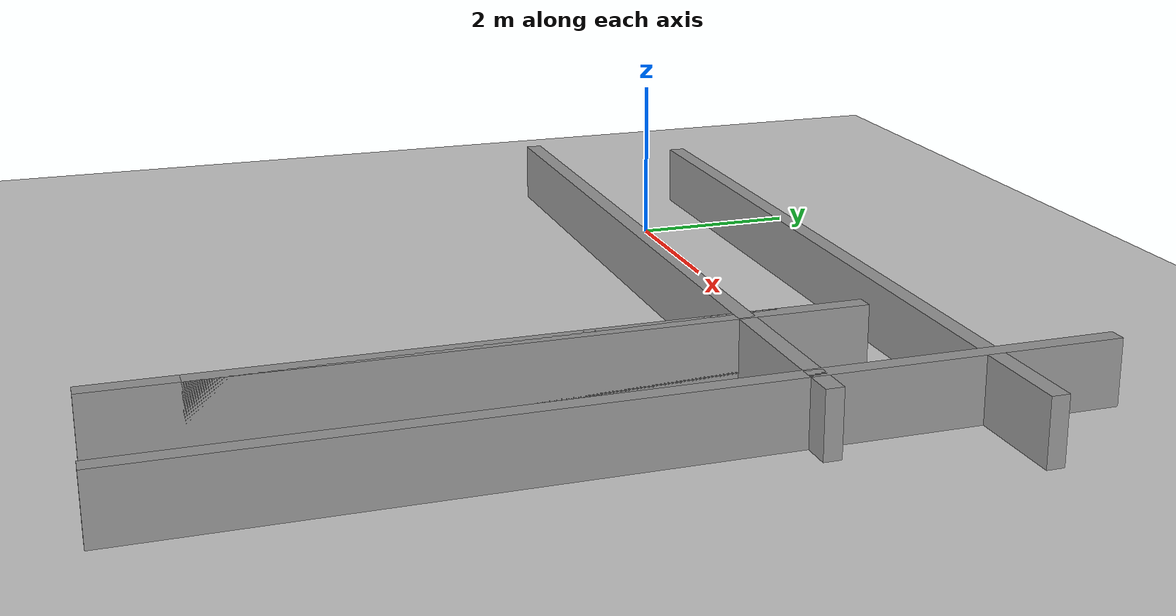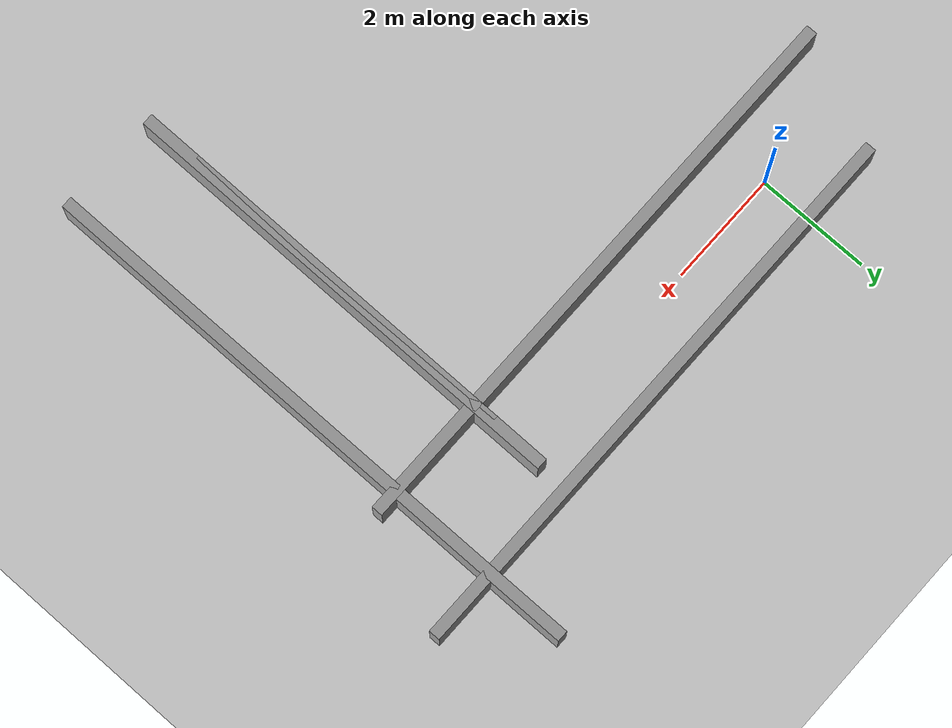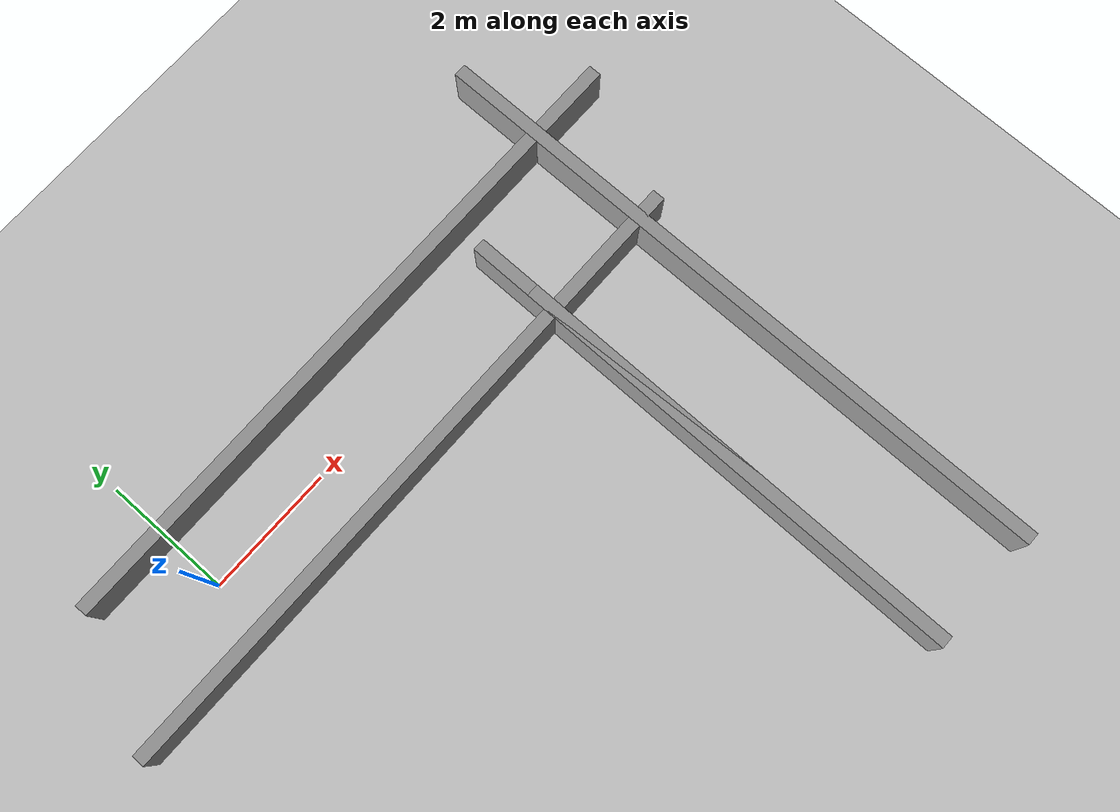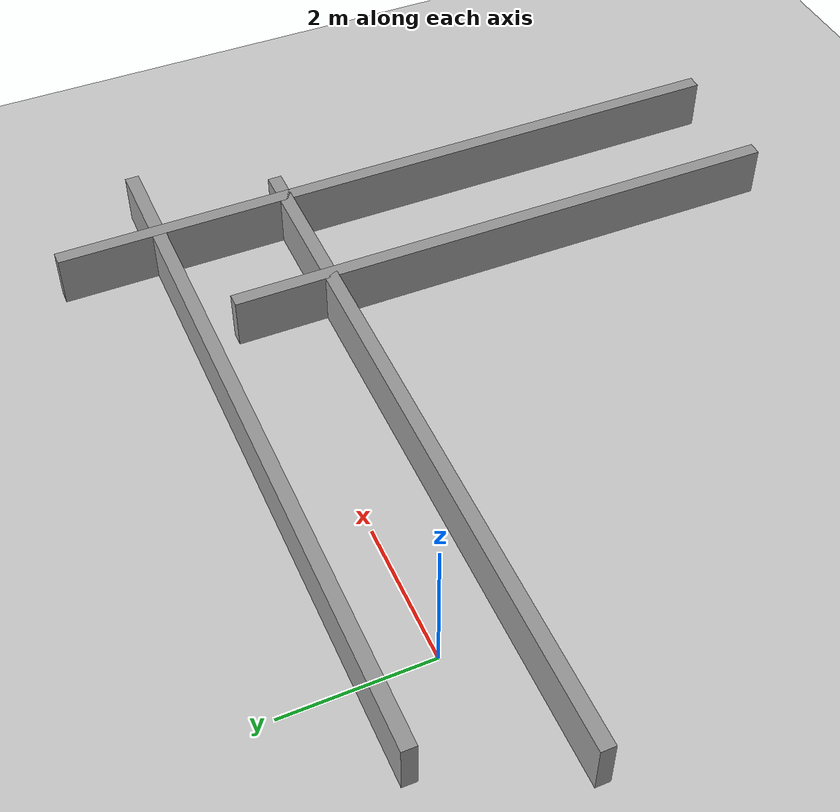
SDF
<sdf version="1.6">
 <world name="default">
  <light name="sun" type="directional">
   <pose>0 0 10 0 -0 0</pose>
   <diffuse>0.8 0.8 0.8 1</diffuse>
   <specular>0.1 0.1 0.1 1</specular>
   <attenuation>
    <range>1000</range>
    <constant>0.9</constant>
    <linear>0.01</linear>
    <quadratic>0.001</quadratic>
   </attenuation>
   <direction>-0.5 0.5 -1</direction>
  </light>
  <model name="ground_plane">
   <static>1</static>
   <link name="ground">
    <collision name="collision">
     <geometry><plane><normal>0 0 1</normal><size>100 100</size></plane></geometry>
     <surface><friction><ode><mu>100</mu><mu2>50</mu2></ode></friction></surface>
    </collision>
    <visual name="visual">
     <cast_shadows>0</cast_shadows>
     <geometry><plane><normal>0 0 1</normal><size>100 100</size></plane></geometry>
     <material>
      <script><uri>file://media/materials/scripts/gazebo.material</uri><name>Gazebo/Grey</name></script>
     </material>
    </visual>
   </link>
  </model>
  <gravity>0 0 -9.8</gravity>
  <magnetic_field>6e-06 2.3e-05 -4.2e-05</magnetic_field>
  <atmosphere type="adiabatic"/>
  <physics name="default_physics" default="0" type="ode">
   <max_step_size>0.001</max_step_size>
   <real_time_factor>1</real_time_factor>
   <real_time_update_rate>1000</real_time_update_rate>
  </physics>
  <scene><ambient>0.4 0.4 0.4 1</ambient><background>0.7 0.7 0.7 1</background><shadows>0</shadows></scene>
  <spherical_coordinates>
   <surface_model>EARTH_WGS84</surface_model>
   <latitude_deg>0</latitude_deg>
   <longitude_deg>0</longitude_deg>
   <elevation>0</elevation>
   <heading_deg>0</heading_deg>
  </spherical_coordinates>
  <model name="wall_maze">
   <link name="wall_1">
    <pose>0.803676 2.03532 1.4 0 -0 0</pose>
    <inertial>
     <inertia><ixx>nan</ixx><ixy>0</ixy><ixz>0</ixz><iyy>nan</iyy><iyz>0</iyz><izz>nan</izz></inertia>
     <mass>0</mass>
    </inertial>
    <visual name="visual">
     <cast_shadows>0</cast_shadows>
     <geometry><box><size>10.2 0.2 0.746663</size></box></geometry>
     <material>
      <script>
       <uri>model://grey_wall/materials/scripts</uri>
       <uri>model://grey_wall/materials/textures</uri>
       <name>vrc/grey_wall</name>
      </script>
      <ambient>1 1 1 1</ambient>
      <diffuse>1 1 1 1</diffuse>
      <specular>0 0 0 1</specular>
      <emissive>0 0 0 1</emissive>
     </material>
    </visual>
    <collision name="collision">
     <geometry><box><size>10.2 0.2 0.746663</size></box></geometry>
     <surface>
      <friction>
       <ode><mu>1</mu><mu2>1</mu2><fdir1>0 0 0</fdir1><slip1>0</slip1><slip2>0</slip2></ode>
       <torsional>
        <coefficient>1</coefficient>
        <patch_radius>0</patch_radius>
        <surface_radius>0</surface_radius>
        <use_patch_radius>1</use_patch_radius>
        <ode><slip>0</slip></ode>
       </torsional>
      </friction>
      <bounce><restitution_coefficient>0</restitution_coefficient><threshold>1e+06</threshold></bounce>
      <contact>
       <collide_without_contact>0</collide_without_contact>
       <collide_without_contact_bitmask>1</collide_without_contact_bitmask>
       <collide_bitmask>1</collide_bitmask>
       <ode>
        <soft_cfm>0</soft_cfm>
        <soft_erp>0.2</soft_erp>
        <kp>1e+13</kp>
        <kd>1</kd>
        <max_vel>0.01</max_vel>
        <min_depth>0</min_depth>
       </ode>
       <bullet>
        <split_impulse>1</split_impulse>
        <split_impulse_penetration_threshold>-0.01</split_impulse_penetration_threshold>
        <soft_cfm>0</soft_cfm>
        <soft_erp>0.2</soft_erp>
        <kp>1e+13</kp>
        <kd>1</kd>
       </bullet>
      </contact>
     </surface>
    </collision>
   </link>
   <link name="wall_2">
    <pose>-0.033253 0.125203 1.4 0 -0 0</pose>
    <inertial>
     <inertia><ixx>nan</ixx><ixy>0</ixy><ixz>0</ixz><iyy>nan</iyy><iyz>0</iyz><izz>nan</izz></inertia>
     <mass>0</mass>
    </inertial>
    <visual name="visual">
     <cast_shadows>0</cast_shadows>
     <geometry><box><size>10.2 0.2 0.746663</size></box></geometry>
     <material>
      <script>
       <uri>model://grey_wall/materials/scripts</uri>
       <uri>model://grey_wall/materials/textures</uri>
       <name>vrc/grey_wall</name>
      </script>
      <ambient>1 1 1 1</ambient>
      <diffuse>1 1 1 1</diffuse>
      <specular>0 0 0 1</specular>
      <emissive>0 0 0 1</emissive>
      <shader type="pixel"/>
     </material>
    </visual>
    <collision name="collision">
     <geometry><box><size>10.2 0.2 0.746663</size></box></geometry>
     <surface>
      <friction>
       <ode><mu>1</mu><mu2>1</mu2><fdir1>0 0 0</fdir1><slip1>0</slip1><slip2>0</slip2></ode>
       <torsional>
        <coefficient>1</coefficient>
        <patch_radius>0</patch_radius>
        <surface_radius>0</surface_radius>
        <use_patch_radius>1</use_patch_radius>
        <ode><slip>0</slip></ode>
       </torsional>
      </friction>
      <bounce><restitution_coefficient>0</restitution_coefficient><threshold>1e+06</threshold></bounce>
      <contact>
       <collide_without_contact>0</collide_without_contact>
       <collide_without_contact_bitmask>1</collide_without_contact_bitmask>
       <collide_bitmask>1</collide_bitmask>
       <ode>
        <soft_cfm>0</soft_cfm>
        <soft_erp>0.2</soft_erp>
        <kp>1e+13</kp>
        <kd>1</kd>
        <max_vel>0.01</max_vel>
        <min_depth>0</min_depth>
       </ode>
       <bullet>
        <split_impulse>1</split_impulse>
        <split_impulse_penetration_threshold>-0.01</split_impulse_penetration_threshold>
        <soft_cfm>0</soft_cfm>
        <soft_erp>0.2</soft_erp>
        <kp>1e+13</kp>
        <kd>1</kd>
       </bullet>
      </contact>
     </surface>
    </collision>
   </link>
   <link name="wall_3">
    <pose>4.63909 -1.60641 1.4 0 -0 1.57239</pose>
    <inertial>
     <inertia><ixx>nan</ixx><ixy>0</ixy><ixz>0</ixz><iyy>nan</iyy><iyz>0</iyz><izz>nan</izz></inertia>
     <mass>0</mass>
    </inertial>
    <visual name="visual">
     <cast_shadows>0</cast_shadows>
     <geometry><box><size>10.2 0.2 0.746663</size></box></geometry>
     <material>
      <script>
       <uri>model://grey_wall/materials/scripts</uri>
       <uri>model://grey_wall/materials/textures</uri>
       <name>vrc/grey_wall</name>
      </script>
      <ambient>1 1 1 1</ambient>
      <diffuse>1 1 1 1</diffuse>
      <specular>0 0 0 1</specular>
      <emissive>0 0 0 1</emissive>
      <shader type="pixel"/>
     </material>
    </visual>
    <collision name="collision">
     <geometry><box><size>10.2 0.2 0.746663</size></box></geometry>
     <surface>
      <friction>
       <ode><mu>1</mu><mu2>1</mu2><fdir1>0 0 0</fdir1><slip1>0</slip1><slip2>0</slip2></ode>
       <torsional>
        <coefficient>1</coefficient>
        <patch_radius>0</patch_radius>
        <surface_radius>0</surface_radius>
        <use_patch_radius>1</use_patch_radius>
        <ode><slip>0</slip></ode>
       </torsional>
      </friction>
      <bounce><restitution_coefficient>0</restitution_coefficient><threshold>1e+06</threshold></bounce>
      <contact>
       <collide_without_contact>0</collide_without_contact>
       <collide_without_contact_bitmask>1</collide_without_contact_bitmask>
       <collide_bitmask>1</collide_bitmask>
       <ode>
        <soft_cfm>0</soft_cfm>
        <soft_erp>0.2</soft_erp>
        <kp>1e+13</kp>
        <kd>1</kd>
        <max_vel>0.01</max_vel>
        <min_depth>0</min_depth>
       </ode>
       <bullet>
        <split_impulse>1</split_impulse>
        <split_impulse_penetration_threshold>-0.01</split_impulse_penetration_threshold>
        <soft_cfm>0</soft_cfm>
        <soft_erp>0.2</soft_erp>
        <kp>1e+13</kp>
        <kd>1</kd>
       </bullet>
      </contact>
     </surface>
    </collision>
   </link>
   <link name="wall_4">
    <pose>2.84694 -2.57551 1.4 0 -0 1.56855</pose>
    <inertial>
     <inertia><ixx>nan</ixx><ixy>0</ixy><ixz>0</ixz><iyy>nan</iyy><iyz>0</iyz><izz>nan</izz></inertia>
     <mass>0</mass>
    </inertial>
    <visual name="visual">
     <cast_shadows>0</cast_shadows>
     <geometry><box><size>8.2 0.2 0.746663</size></box></geometry>
     <material>
      <script>
       <uri>model://grey_wall/materials/scripts</uri>
       <uri>model://grey_wall/materials/textures</uri>
       <name>vrc/grey_wall</name>
      </script>
      <ambient>1 1 1 1</ambient>
      <diffuse>1 1 1 1</diffuse>
      <specular>0 0 0 1</specular>
      <emissive>0 0 0 1</emissive>
      <shader type="pixel"/>
     </material>
    </visual>
    <collision name="collision">
     <geometry><box><size>8.2 0.2 0.746663</size></box></geometry>
     <surface>
      <friction>
       <ode><mu>1</mu><mu2>1</mu2><fdir1>0 0 0</fdir1><slip1>0</slip1><slip2>0</slip2></ode>
       <torsional>
        <coefficient>1</coefficient>
        <patch_radius>0</patch_radius>
        <surface_radius>0</surface_radius>
        <use_patch_radius>1</use_patch_radius>
        <ode><slip>0</slip></ode>
       </torsional>
      </friction>
      <bounce><restitution_coefficient>0</restitution_coefficient><threshold>1e+06</threshold></bounce>
      <contact>
       <collide_without_contact>0</collide_without_contact>
       <collide_without_contact_bitmask>1</collide_without_contact_bitmask>
       <collide_bitmask>1</collide_bitmask>
       <ode>
        <soft_cfm>0</soft_cfm>
        <soft_erp>0.2</soft_erp>
        <kp>1e+13</kp>
        <kd>1</kd>
        <max_vel>0.01</max_vel>
        <min_depth>0</min_depth>
       </ode>
       <bullet>
        <split_impulse>1</split_impulse>
        <split_impulse_penetration_threshold>-0.01</split_impulse_penetration_threshold>
        <soft_cfm>0</soft_cfm>
        <soft_erp>0.2</soft_erp>
        <kp>1e+13</kp>
        <kd>1</kd>
       </bullet>
      </contact>
     </surface>
    </collision>
   </link>
   <link name="wall_5">
    <pose>2.84694 -2.57551 1.4 0 -0 1.56855</pose>
    <inertial>
     <inertia><ixx>nan</ixx><ixy>0</ixy><ixz>0</ixz><iyy>nan</iyy><iyz>0</iyz><izz>nan</izz></inertia>
     <mass>0</mass>
    </inertial>
    <visual name="visual">
     <cast_shadows>0</cast_shadows>
     <geometry><box><size>6.2 0.2 0.746663</size></box></geometry>
     <material>
      <script>
       <uri>model://grey_wall/materials/scripts</uri>
       <uri>model://grey_wall/materials/textures</uri>
       <name>vrc/grey_wall</name>
      </script>
      <ambient>1 1 1 1</ambient>
      <diffuse>1 1 1 1</diffuse>
      <specular>0 0 0 1</specular>
      <emissive>0 0 0 1</emissive>
      <shader type="pixel"/>
     </material>
    </visual>
    <collision name="collision">
     <geometry><box><size>6.2 0.2 0.746663</size></box></geometry>
     <surface>
      <friction>
       <ode><mu>1</mu><mu2>1</mu2><fdir1>0 0 0</fdir1><slip1>0</slip1><slip2>0</slip2></ode>
       <torsional>
        <coefficient>1</coefficient>
        <patch_radius>0</patch_radius>
        <surface_radius>0</surface_radius>
        <use_patch_radius>1</use_patch_radius>
        <ode><slip>0</slip></ode>
       </torsional>
      </friction>
      <bounce><restitution_coefficient>0</restitution_coefficient><threshold>1e+06</threshold></bounce>
      <contact>
       <collide_without_contact>0</collide_without_contact>
       <collide_without_contact_bitmask>1</collide_without_contact_bitmask>
       <collide_bitmask>1</collide_bitmask>
       <ode>
        <soft_cfm>0</soft_cfm>
        <soft_erp>0.2</soft_erp>
        <kp>1e+13</kp>
        <kd>1</kd>
        <max_vel>0.01</max_vel>
        <min_depth>0</min_depth>
       </ode>
       <bullet>
        <split_impulse>1</split_impulse>
        <split_impulse_penetration_threshold>-0.01</split_impulse_penetration_threshold>
        <soft_cfm>0</soft_cfm>
        <soft_erp>0.2</soft_erp>
        <kp>1e+13</kp>
        <kd>1</kd>
       </bullet>
      </contact>
     </surface>
    </collision>
   </link>
   <link name="wall_6">
    <pose>2.84694 -2.57551 1.4 0 -0 1.56855</pose>
    <inertial>
     <inertia><ixx>nan</ixx><ixy>0</ixy><ixz>0</ixz><iyy>nan</iyy><iyz>0</iyz><izz>nan</izz></inertia>
     <mass>0</mass>
    </inertial>
    <visual name="visual">
     <cast_shadows>0</cast_shadows>
     <geometry><box><size>6.2 0.2 0.746663</size></box></geometry>
     <material>
      <script>
       <uri>model://grey_wall/materials/scripts</uri>
       <uri>model://grey_wall/materials/textures</uri>
       <name>vrc/grey_wall</name>
      </script>
      <ambient>1 1 1 1</ambient>
      <diffuse>1 1 1 1</diffuse>
      <specular>0 0 0 1</specular>
      <emissive>0 0 0 1</emissive>
      <shader type="pixel"/>
     </material>
    </visual>
    <collision name="collision">
     <geometry><box><size>6.2 0.2 0.746663</size></box></geometry>
     <surface>
      <friction>
       <ode><mu>1</mu><mu2>1</mu2><fdir1>0 0 0</fdir1><slip1>0</slip1><slip2>0</slip2></ode>
       <torsional>
        <coefficient>1</coefficient>
        <patch_radius>0</patch_radius>
        <surface_radius>0</surface_radius>
        <use_patch_radius>1</use_patch_radius>
        <ode><slip>0</slip></ode>
       </torsional>
      </friction>
      <bounce><restitution_coefficient>0</restitution_coefficient><threshold>1e+06</threshold></bounce>
      <contact>
       <collide_without_contact>0</collide_without_contact>
       <collide_without_contact_bitmask>1</collide_without_contact_bitmask>
       <collide_bitmask>1</collide_bitmask>
       <ode>
        <soft_cfm>0</soft_cfm>
        <soft_erp>0.2</soft_erp>
        <kp>1e+13</kp>
        <kd>1</kd>
        <max_vel>0.01</max_vel>
        <min_depth>0</min_depth>
       </ode>
       <bullet>
        <split_impulse>1</split_impulse>
        <split_impulse_penetration_threshold>-0.01</split_impulse_penetration_threshold>
        <soft_cfm>0</soft_cfm>
        <soft_erp>0.2</soft_erp>
        <kp>1e+13</kp>
        <kd>1</kd>
       </bullet>
      </contact>
     </surface>
    </collision>
   </link>
   <link name="wall_7">
    <pose>2.84694 -2.57551 1.4 0 -0 1.56855</pose>
    <inertial>
     <inertia><ixx>nan</ixx><ixy>0</ixy><ixz>0</ixz><iyy>nan</iyy><iyz>0</iyz><izz>nan</izz></inertia>
     <mass>0</mass>
    </inertial>
    <visual name="visual">
     <cast_shadows>0</cast_shadows>
     <geometry><box><size>6.2 0.2 0.746663</size></box></geometry>
     <material>
      <script>
       <uri>model://grey_wall/materials/scripts</uri>
       <uri>model://grey_wall/materials/textures</uri>
       <name>vrc/grey_wall</name>
      </script>
      <ambient>1 1 1 1</ambient>
      <diffuse>1 1 1 1</diffuse>
      <specular>0 0 0 1</specular>
      <emissive>0 0 0 1</emissive>
      <shader type="pixel"/>
     </material>
    </visual>
    <collision name="collision">
     <geometry><box><size>6.2 0.2 0.746663</size></box></geometry>
     <surface>
      <friction>
       <ode><mu>1</mu><mu2>1</mu2><fdir1>0 0 0</fdir1><slip1>0</slip1><slip2>0</slip2></ode>
       <torsional>
        <coefficient>1</coefficient>
        <patch_radius>0</patch_radius>
        <surface_radius>0</surface_radius>
        <use_patch_radius>1</use_patch_radius>
        <ode><slip>0</slip></ode>
       </torsional>
      </friction>
      <bounce><restitution_coefficient>0</restitution_coefficient><threshold>1e+06</threshold></bounce>
      <contact>
       <collide_without_contact>0</collide_without_contact>
       <collide_without_contact_bitmask>1</collide_without_contact_bitmask>
       <collide_bitmask>1</collide_bitmask>
       <ode>
        <soft_cfm>0</soft_cfm>
        <soft_erp>0.2</soft_erp>
        <kp>1e+13</kp>
        <kd>1</kd>
        <max_vel>0.01</max_vel>
        <min_depth>0</min_depth>
       </ode>
       <bullet>
        <split_impulse>1</split_impulse>
        <split_impulse_penetration_threshold>-0.01</split_impulse_penetration_threshold>
        <soft_cfm>0</soft_cfm>
        <soft_erp>0.2</soft_erp>
        <kp>1e+13</kp>
        <kd>1</kd>
       </bullet>
      </contact>
     </surface>
    </collision>
   </link>
   <link name="wall_8">
    <pose>2.84694 -2.57551 1.4 0 -0 1.56855</pose>
    <inertial>
     <inertia><ixx>nan</ixx><ixy>0</ixy><ixz>0</ixz><iyy>nan</iyy><iyz>0</iyz><izz>nan</izz></inertia>
     <mass>0</mass>
    </inertial>
    <visual name="visual">
     <cast_shadows>0</cast_shadows>
     <geometry><box><size>6.2 0.2 0.746663</size></box></geometry>
     <material>
      <script>
       <uri>model://grey_wall/materials/scripts</uri>
       <uri>model://grey_wall/materials/textures</uri>
       <name>vrc/grey_wall</name>
      </script>
      <ambient>1 1 1 1</ambient>
      <diffuse>1 1 1 1</diffuse>
      <specular>0 0 0 1</specular>
      <emissive>0 0 0 1</emissive>
      <shader type="pixel"/>
     </material>
    </visual>
    <collision name="collision">
     <geometry><box><size>6.2 0.2 0.746663</size></box></geometry>
     <surface>
      <friction>
       <ode><mu>1</mu><mu2>1</mu2><fdir1>0 0 0</fdir1><slip1>0</slip1><slip2>0</slip2></ode>
       <torsional>
        <coefficient>1</coefficient>
        <patch_radius>0</patch_radius>
        <surface_radius>0</surface_radius>
        <use_patch_radius>1</use_patch_radius>
        <ode><slip>0</slip></ode>
       </torsional>
      </friction>
      <bounce><restitution_coefficient>0</restitution_coefficient><threshold>1e+06</threshold></bounce>
      <contact>
       <collide_without_contact>0</collide_without_contact>
       <collide_without_contact_bitmask>1</collide_without_contact_bitmask>
       <collide_bitmask>1</collide_bitmask>
       <ode>
        <soft_cfm>0</soft_cfm>
        <soft_erp>0.2</soft_erp>
        <kp>1e+13</kp>
        <kd>1</kd>
        <max_vel>0.01</max_vel>
        <min_depth>0</min_depth>
       </ode>
       <bullet>
        <split_impulse>1</split_impulse>
        <split_impulse_penetration_threshold>-0.01</split_impulse_penetration_threshold>
        <soft_cfm>0</soft_cfm>
        <soft_erp>0.2</soft_erp>
        <kp>1e+13</kp>
        <kd>1</kd>
       </bullet>
      </contact>
     </surface>
    </collision>
   </link>
   <static>1</static>
   <pose>2.95028 -1.09189 -1 0 -0 0</pose>
  </model>
 </world>
</sdf>
